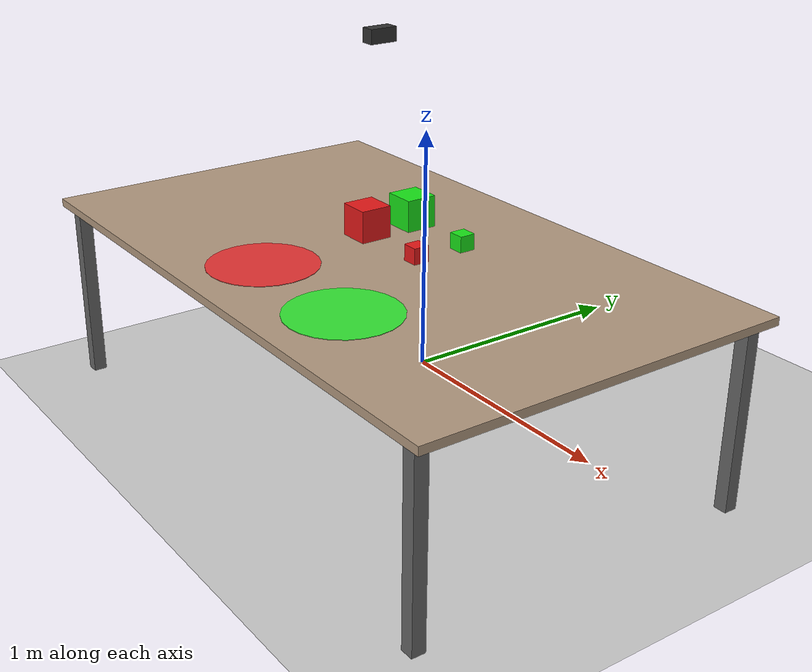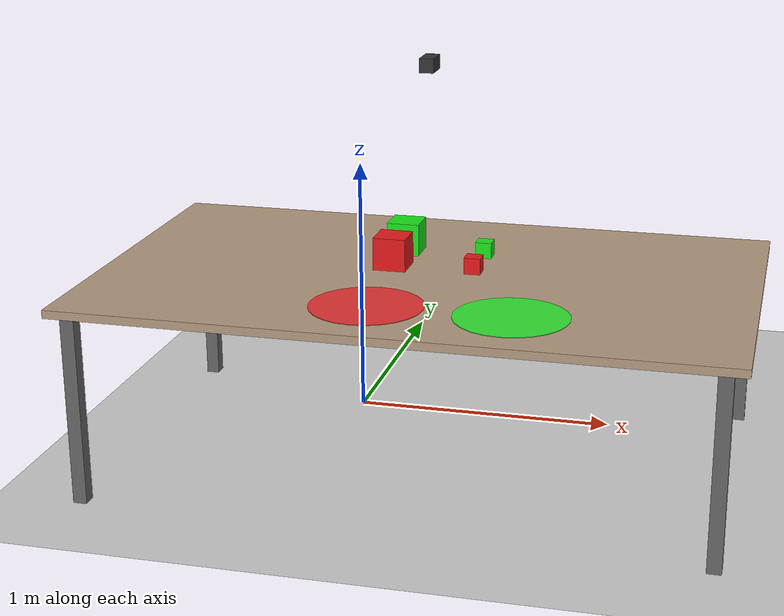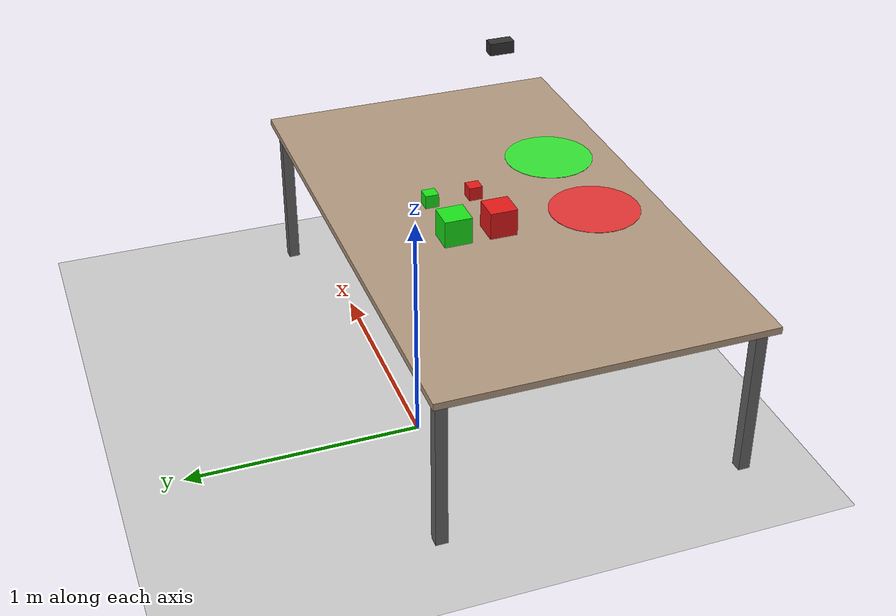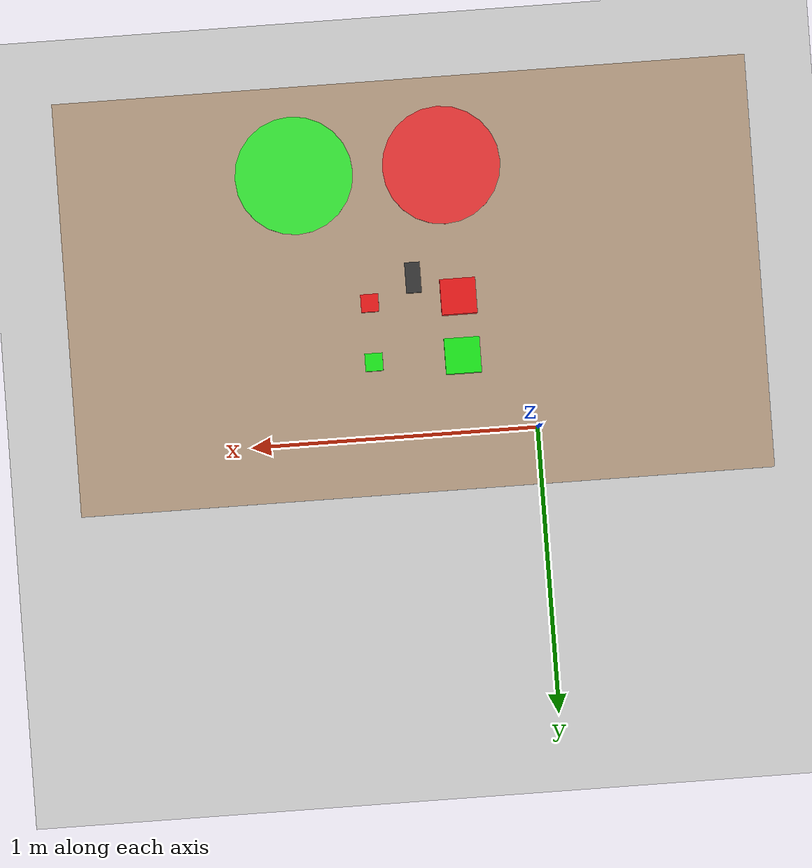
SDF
<?xml version="1.0" ?>
<sdf version="1.8">
  <world name="pick_place_world">

    <!-- Physics -->
    <physics name="default_physics" type="ode">
      <max_step_size>0.001</max_step_size>
      <real_time_factor>1.0</real_time_factor>
      <real_time_update_rate>1000</real_time_update_rate>
    </physics>

    <!-- Plugins -->
    <plugin filename="gz-sim-physics-system" name="gz::sim::systems::Physics"/>
    <plugin filename="gz-sim-user-commands-system" name="gz::sim::systems::UserCommands"/>
    <plugin filename="gz-sim-scene-broadcaster-system" name="gz::sim::systems::SceneBroadcaster"/>
    <plugin filename="gz-sim-sensors-system" name="gz::sim::systems::Sensors">
      <render_engine>ogre2</render_engine>
    </plugin>
    <plugin filename="gz-sim-contact-system" name="gz::sim::systems::Contact"/>

    <!-- Scene (DIM / LOW-LIGHT VARIANT) -->
    <scene>
      <!-- Was: 0.4 0.4 0.4 1 -->
      <ambient>0.05 0.05 0.05 1</ambient>
      <!-- Was: 0.7 0.7 0.8 1 -->
      <background>0.08 0.08 0.10 1</background>
      <shadows>true</shadows>
    </scene>

    <!-- Light (DIM / LOW-LIGHT VARIANT) -->
    <light type="directional" name="sun">
      <cast_shadows>true</cast_shadows>
      <pose>0 0 10 0 0 0</pose>
      <!-- Was: 0.8 0.8 0.8 1 -->
      <diffuse>0.12 0.12 0.12 1</diffuse>
      <!-- Was: 0.2 0.2 0.2 1 -->
      <specular>0.03 0.03 0.03 1</specular>
      <direction>-0.5 0.1 -0.9</direction>
    </light>

    <!-- Ground Plane -->
    <model name="ground_plane">
      <static>true</static>
      <link name="link">
        <collision name="collision">
          <geometry>
            <plane>
              <normal>0 0 1</normal>
              <size>10 10</size>
            </plane>
          </geometry>
        </collision>
        <visual name="visual">
          <geometry>
            <plane>
              <normal>0 0 1</normal>
              <size>10 10</size>
            </plane>
          </geometry>
          <material>
            <ambient>0.8 0.8 0.8 1</ambient>
            <diffuse>0.8 0.8 0.8 1</diffuse>
          </material>
        </visual>
      </link>
    </model>

    <!-- Modern Table (from original project) -->
    <!-- Table surface is at z=0.74m, table is 2.35m x 1m -->
    <include>
      <uri>model://modern_table</uri>
      <name>modern_table</name>
      <pose>0.4 -0.5 0 0 0 0</pose>
    </include>

    <!-- CUBES: 4 cubes for size-based sorting                                   -->
    <!-- Big cubes: 12cm, Small cubes: 6cm                                       -->
    <!-- Layout on table - PICK AREA (front of table, away from place markers):  -->
    <!--   Big green:   (0.25, -0.25) -> robot (0.25, 0.25)                      -->
    <!--   Small green: (0.55, -0.25) -> robot (0.55, 0.25)                      -->
    <!--   Big red:     (0.25, -0.45) -> robot (0.25, 0.05)                      -->
    <!--   Small red:   (0.55, -0.45) -> robot (0.55, 0.05)                      -->

    <!-- Big Green Cube (12cm) - Priority 1 -->
    <!-- Z = table(0.74) + half_cube(0.06) = 0.80 -->
    <include>
      <uri>model://big_green_cube</uri>
      <name>big_green_cube</name>
      <pose>0.25 -0.25 0.80 0 0 0</pose>
    </include>

    <!-- Small Green Cube (6cm) - Priority 2 -->
    <!-- Z = table(0.74) + half_cube(0.03) = 0.77 -->
    <include>
      <uri>model://green_cube</uri>
      <name>green_cube</name>
      <pose>0.55 -0.25 0.77 0 0 0</pose>
    </include>

    <!-- Big Red Cube (12cm) - Priority 3 -->
    <!-- Z = table(0.74) + half_cube(0.06) = 0.80 -->
    <include>
      <uri>model://big_red_cube</uri>
      <name>big_red_cube</name>
      <pose>0.25 -0.45 0.80 0 0 0</pose>
    </include>

    <!-- Small Red Cube (6cm) - Priority 4 -->
    <!-- Z = table(0.74) + half_cube(0.03) = 0.77 -->
    <include>
      <uri>model://red_cube</uri>
      <name>red_cube</name>
      <pose>0.55 -0.45 0.77 0 0 0</pose>
    </include>

    <!-- PLACE MARKERS: 2 markers (green and red) - PLACE AREA (back of table)  -->
    <!-- Each marker will receive 2 cubes (big and small) side by side           -->
    <!-- Place area is at world Y = -0.90 (robot Y = -0.40), well separated      -->
    <!-- from pick area at world Y = -0.25 to -0.45                               -->

    <!-- Red Target Patch - Place Location Marker -->
    <!-- Robot place positions: big_red (0.35, -0.40), small_red (0.20, -0.40) -->
    <model name="red_place_marker">
      <static>true</static>
      <pose>0.275 -0.90 0.741 0 0 0</pose>
      <link name="marker_link">
        <visual name="visual">
          <geometry>
            <cylinder>
              <radius>0.20</radius>
              <length>0.002</length>
            </cylinder>
          </geometry>
          <material>
            <ambient>0.9 0.2 0.2 1</ambient>
            <diffuse>0.9 0.2 0.2 1</diffuse>
            <specular>0.3 0.1 0.1 1</specular>
          </material>
        </visual>
      </link>
    </model>

    <!-- Green Target Patch - Place Location Marker for green cubes -->
    <!-- Robot place positions: big_green (0.70, -0.40), small_green (0.85, -0.40) -->
    <model name="green_place_marker">
      <static>true</static>
      <pose>0.775 -0.90 0.741 0 0 0</pose>
      <link name="marker_link">
        <visual name="visual">
          <geometry>
            <cylinder>
              <radius>0.20</radius>
              <length>0.002</length>
            </cylinder>
          </geometry>
          <material>
            <ambient>0.2 0.9 0.2 1</ambient>
            <diffuse>0.2 0.9 0.2 1</diffuse>
            <specular>0.1 0.3 0.1 1</specular>
          </material>
        </visual>
      </link>
    </model>

    <!-- RGBD Camera for Vision-Based Object Detection                          -->
    <!-- Positioned above the table looking down at the workspace               -->
    <!-- Camera is at (0.4, -0.5, 1.5) - directly above table center            -->
    <!-- Orientation: pitch down 90 degrees to look at table                    -->
    <model name="overhead_camera">
      <static>true</static>
      <!-- Position: above table center, 1.5m height -->
      <!-- Orientation: roll=0, pitch=1.5708 (90 deg down), yaw=0 -->
      <pose>0.4 -0.5 1.5 0 1.5708 0</pose>
      <link name="camera_link">
        <visual name="camera_visual">
          <geometry>
            <box>
              <size>0.05 0.1 0.05</size>
            </box>
          </geometry>
          <material>
            <ambient>0.1 0.1 0.1 1</ambient>
            <diffuse>0.2 0.2 0.2 1</diffuse>
          </material>
        </visual>
        <sensor name="rgbd_camera" type="rgbd_camera">
          <camera>
            <horizontal_fov>1.047</horizontal_fov>
            <image>
              <width>640</width>
              <height>480</height>
              <format>R8G8B8</format>
            </image>
            <clip>
              <near>0.1</near>
              <far>10.0</far>
            </clip>
            <depth_camera>
              <clip>
                <near>0.1</near>
                <far>10.0</far>
              </clip>
            </depth_camera>
          </camera>
          <always_on>1</always_on>
          <update_rate>10</update_rate>
          <visualize>true</visualize>
          <topic>camera</topic>
        </sensor>
      </link>
    </model>

  </world>
</sdf>

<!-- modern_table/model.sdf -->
<sdf version="1.8">
  <model name="modern_table">
    <static>true</static>
    <link name="link">
      <pose>0 0 0.74 0 0 0</pose>

      <!-- Larger collision surface: 2.35m x 1.4m (was 2.35 x 1) -->
      <collision name="surface">
        <pose>0 0 -0.015 0 0 0</pose>
        <geometry>
          <box>
            <size>2.35 1.4 0.03</size>
          </box>
        </geometry>
      </collision>

      <!-- Simple box visual for larger table surface -->
      <visual name="table_surface">
        <pose>0 0 -0.015 0 0 0</pose>
        <geometry>
          <box>
            <size>2.35 1.4 0.03</size>
          </box>
        </geometry>
        <material>
          <ambient>0.6 0.5 0.4 1</ambient>
          <diffuse>0.7 0.6 0.5 1</diffuse>
          <specular>0.2 0.2 0.2 1</specular>
        </material>
      </visual>

      <!-- Table legs (4 corners) -->
      <visual name="leg_front_left">
        <pose>1.1 0.65 -0.37 0 0 0</pose>
        <geometry>
          <box><size>0.05 0.05 0.70</size></box>
        </geometry>
        <material>
          <ambient>0.3 0.3 0.3 1</ambient>
          <diffuse>0.4 0.4 0.4 1</diffuse>
        </material>
      </visual>
      <visual name="leg_front_right">
        <pose>-1.1 0.65 -0.37 0 0 0</pose>
        <geometry>
          <box><size>0.05 0.05 0.70</size></box>
        </geometry>
        <material>
          <ambient>0.3 0.3 0.3 1</ambient>
          <diffuse>0.4 0.4 0.4 1</diffuse>
        </material>
      </visual>
      <visual name="leg_back_left">
        <pose>1.1 -0.65 -0.37 0 0 0</pose>
        <geometry>
          <box><size>0.05 0.05 0.70</size></box>
        </geometry>
        <material>
          <ambient>0.3 0.3 0.3 1</ambient>
          <diffuse>0.4 0.4 0.4 1</diffuse>
        </material>
      </visual>
      <visual name="leg_back_right">
        <pose>-1.1 -0.65 -0.37 0 0 0</pose>
        <geometry>
          <box><size>0.05 0.05 0.70</size></box>
        </geometry>
        <material>
          <ambient>0.3 0.3 0.3 1</ambient>
          <diffuse>0.4 0.4 0.4 1</diffuse>
        </material>
      </visual>
    </link>
  </model>
</sdf>

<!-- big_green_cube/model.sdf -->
<sdf version="1.8">
  <model name="big_green_cube">
    <static>false</static>
    <link name="link">
      <inertial>
        <!-- 12cm cube, 1.6kg (8x volume = 8x mass) -->
        <mass>1.6</mass>
        <inertia>
          <!-- I = (1/6) * m * s^2 for a cube = (1/6) * 1.6 * 0.12^2 = 0.00384 -->
          <ixx>0.00384</ixx>
          <iyy>0.00384</iyy>
          <izz>0.00384</izz>
          <ixy>0</ixy>
          <ixz>0</ixz>
          <iyz>0</iyz>
        </inertia>
      </inertial>
      <collision name="collision">
        <geometry>
          <box>
            <!-- 12cm cube - double the size of small cube -->
            <size>0.12 0.12 0.12</size>
          </box>
        </geometry>
        <surface>
          <friction>
            <ode>
              <mu>2.0</mu>
              <mu2>2.0</mu2>
            </ode>
          </friction>
          <contact>
            <ode>
              <kp>1e6</kp>
              <kd>100</kd>
              <max_vel>0.05</max_vel>
              <min_depth>0.0005</min_depth>
            </ode>
          </contact>
        </surface>
      </collision>
      <visual name="visual">
        <geometry>
          <box>
            <size>0.12 0.12 0.12</size>
          </box>
        </geometry>
        <material>
          <ambient>0.1 0.8 0.1 1</ambient>
          <diffuse>0.1 0.9 0.1 1</diffuse>
          <specular>0.2 0.2 0.2 1</specular>
        </material>
      </visual>
    </link>
  </model>
</sdf>

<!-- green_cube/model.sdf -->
<sdf version="1.8">
  <model name="green_cube">
    <static>false</static>
    <link name="link">
      <inertial>
        <!-- 6cm cube, 0.2kg - heavier for better physics -->
        <mass>0.2</mass>
        <inertia>
          <!-- I = (1/6) * m * s^2 for a cube -->
          <ixx>0.00012</ixx>
          <iyy>0.00012</iyy>
          <izz>0.00012</izz>
          <ixy>0</ixy>
          <ixz>0</ixz>
          <iyz>0</iyz>
        </inertia>
      </inertial>
      <collision name="collision">
        <geometry>
          <box>
            <!-- 6cm cube - easier to grip with Robotiq 85 -->
            <size>0.06 0.06 0.06</size>
          </box>
        </geometry>
        <surface>
          <friction>
            <ode>
              <mu>2.0</mu>
              <mu2>2.0</mu2>
            </ode>
          </friction>
          <contact>
            <ode>
              <kp>1e6</kp>
              <kd>100</kd>
              <max_vel>0.05</max_vel>
              <min_depth>0.0005</min_depth>
            </ode>
          </contact>
        </surface>
      </collision>
      <visual name="visual">
        <geometry>
          <box>
            <size>0.06 0.06 0.06</size>
          </box>
        </geometry>
        <material>
          <ambient>0.1 0.8 0.1 1</ambient>
          <diffuse>0.1 0.9 0.1 1</diffuse>
          <specular>0.2 0.2 0.2 1</specular>
        </material>
      </visual>
    </link>
  </model>
</sdf>

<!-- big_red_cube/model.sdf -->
<sdf version="1.8">
  <model name="big_red_cube">
    <static>false</static>
    <link name="link">
      <inertial>
        <!-- 12cm cube, 1.6kg (8x volume = 8x mass) -->
        <mass>1.6</mass>
        <inertia>
          <!-- I = (1/6) * m * s^2 for a cube = (1/6) * 1.6 * 0.12^2 = 0.00384 -->
          <ixx>0.00384</ixx>
          <iyy>0.00384</iyy>
          <izz>0.00384</izz>
          <ixy>0</ixy>
          <ixz>0</ixz>
          <iyz>0</iyz>
        </inertia>
      </inertial>
      <collision name="collision">
        <geometry>
          <box>
            <!-- 12cm cube - double the size of small cube -->
            <size>0.12 0.12 0.12</size>
          </box>
        </geometry>
        <surface>
          <friction>
            <ode>
              <mu>1.5</mu>
              <mu2>1.5</mu2>
            </ode>
          </friction>
          <contact>
            <ode>
              <kp>1e6</kp>
              <kd>100</kd>
              <max_vel>0.1</max_vel>
              <min_depth>0.001</min_depth>
            </ode>
          </contact>
        </surface>
      </collision>
      <visual name="visual">
        <geometry>
          <box>
            <size>0.12 0.12 0.12</size>
          </box>
        </geometry>
        <material>
          <ambient>0.8 0.1 0.1 1</ambient>
          <diffuse>0.9 0.1 0.1 1</diffuse>
          <specular>0.2 0.2 0.2 1</specular>
        </material>
      </visual>
    </link>
  </model>
</sdf>

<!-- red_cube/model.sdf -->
<sdf version="1.8">
  <model name="red_cube">
    <static>false</static>
    <link name="link">
      <inertial>
        <!-- 6cm cube, 0.2kg - heavier for better physics -->
        <mass>0.2</mass>
        <inertia>
          <!-- I = (1/6) * m * s^2 for a cube -->
          <ixx>0.00012</ixx>
          <iyy>0.00012</iyy>
          <izz>0.00012</izz>
          <ixy>0</ixy>
          <ixz>0</ixz>
          <iyz>0</iyz>
        </inertia>
      </inertial>
      <collision name="collision">
        <geometry>
          <box>
            <!-- 6cm cube - easier to grip with Robotiq 85 -->
            <size>0.06 0.06 0.06</size>
          </box>
        </geometry>
        <surface>
          <friction>
            <ode>
              <mu>2.0</mu>
              <mu2>2.0</mu2>
            </ode>
          </friction>
          <contact>
            <ode>
              <kp>1e6</kp>
              <kd>100</kd>
              <max_vel>0.05</max_vel>
              <min_depth>0.0005</min_depth>
            </ode>
          </contact>
        </surface>
      </collision>
      <visual name="visual">
        <geometry>
          <box>
            <size>0.06 0.06 0.06</size>
          </box>
        </geometry>
        <material>
          <ambient>0.8 0.1 0.1 1</ambient>
          <diffuse>0.9 0.1 0.1 1</diffuse>
          <specular>0.2 0.2 0.2 1</specular>
        </material>
      </visual>
    </link>
  </model>
</sdf>
